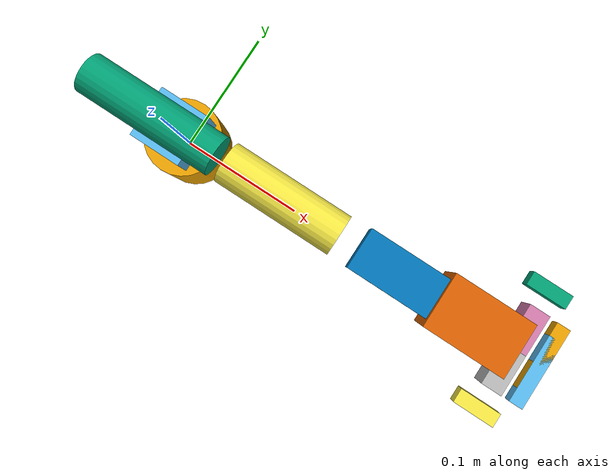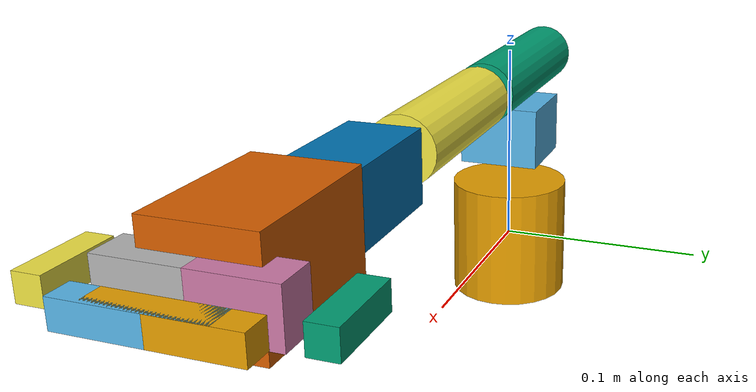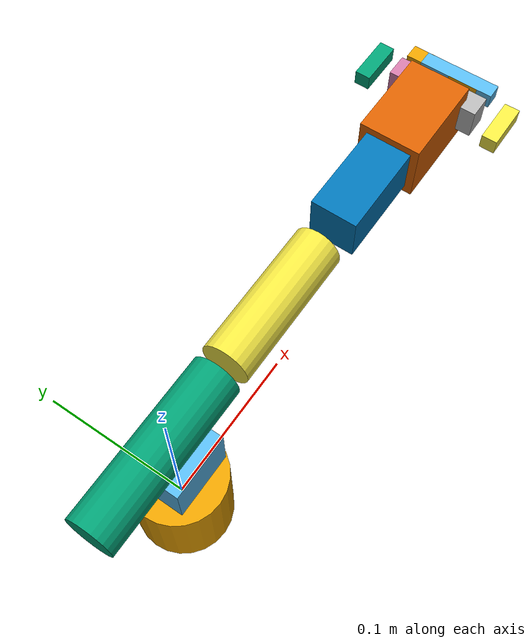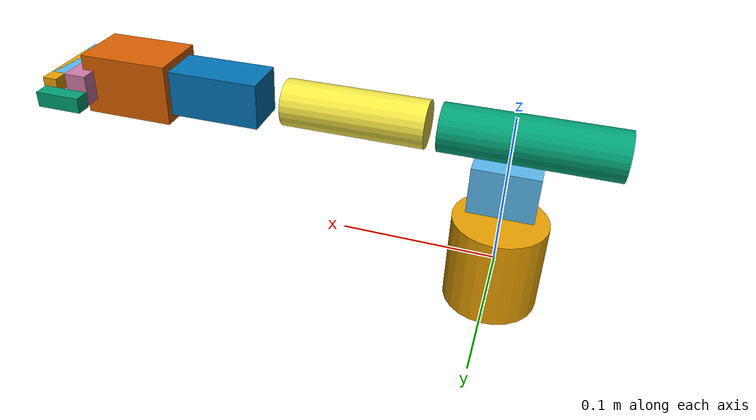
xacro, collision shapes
<?xml version="1.0" ?>
<robot name="learm">
  <!-- Arm base: cylinder mount matching iris_with_arm SDF -->
  <link name="arm_base_link">
    <inertial>
      <mass value="0.001"/>
      <inertia ixx="0.000001" ixy="0" ixz="0" iyy="0.000001" iyz="0" izz="0.000001"/>
    </inertial>
    <visual>
      <geometry>
        <cylinder radius="0.03" length="0.06"/>
      </geometry>
    </visual>
    <collision>
      <geometry>
        <cylinder radius="0.03" length="0.06"/>
      </geometry>
    </collision>
  </link>
  <link name="shoulder_link">
    <inertial>
      <mass value="0.001"/>
      <inertia ixx="0.000001" ixy="0" ixz="0" iyy="0.000001" iyz="0" izz="0.000001"/>
    </inertial>
    <visual>
      <geometry>
        <mesh filename="package://ardupilot_gz_description/models/iris_with_arm/meshes/shoulder.stl"/>
      </geometry>
    </visual>
    <collision>
      <geometry>
        <box size="0.04 0.04 0.03"/>
      </geometry>
    </collision>
  </link>
  <link name="humerus_link">
    <inertial>
      <mass value="0.001"/>
      <inertia ixx="0.000001" ixy="0" ixz="0" iyy="0.000001" iyz="0" izz="0.000001"/>
    </inertial>
    <visual>
      <geometry>
        <mesh filename="package://ardupilot_gz_description/models/iris_with_arm/meshes/humerus.stl"/>
      </geometry>
    </visual>
    <collision>
      <geometry>
        <cylinder radius="0.015" length="0.105"/>
      </geometry>
    </collision>
  </link>
  <link name="forearm_link">
    <inertial>
      <mass value="0.001"/>
      <inertia ixx="0.000001" ixy="0" ixz="0" iyy="0.000001" iyz="0" izz="0.000001"/>
    </inertial>
    <visual>
      <geometry>
        <mesh filename="package://ardupilot_gz_description/models/iris_with_arm/meshes/forearm.stl"/>
      </geometry>
    </visual>
    <collision>
      <geometry>
        <cylinder radius="0.015" length="0.09"/>
      </geometry>
    </collision>
  </link>
  <link name="wrist_link">
    <inertial>
      <mass value="0.001"/>
      <inertia ixx="0.000001" ixy="0" ixz="0" iyy="0.000001" iyz="0" izz="0.000001"/>
    </inertial>
    <visual>
      <geometry>
        <mesh filename="package://ardupilot_gz_description/models/iris_with_arm/meshes/wrist.stl"/>
      </geometry>
    </visual>
    <collision>
      <geometry>
        <box size="0.03 0.03 0.06"/>
      </geometry>
    </collision>
  </link>
  <link name="hand_link">
    <inertial>
      <mass value="0.001"/>
      <inertia ixx="0.000001" ixy="0" ixz="0" iyy="0.000001" iyz="0" izz="0.000001"/>
    </inertial>
    <visual>
      <geometry>
        <mesh filename="package://ardupilot_gz_description/models/iris_with_arm/meshes/hand.stl"/>
      </geometry>
    </visual>
    <collision>
      <geometry>
        <box size="0.04 0.04 0.06"/>
      </geometry>
    </collision>
  </link>
  <link name="grip_left_link">
    <inertial>
      <mass value="0.001"/>
      <inertia ixx="0.000001" ixy="0" ixz="0" iyy="0.000001" iyz="0" izz="0.000001"/>
    </inertial>
    <visual>
      <geometry>
        <mesh filename="package://ardupilot_gz_description/models/iris_with_arm/meshes/carpal-left.stl"/>
      </geometry>
    </visual>
    <collision>
      <geometry>
        <box size="0.02 0.015 0.03"/>
      </geometry>
    </collision>
  </link>
  <link name="grip_right_link">
    <inertial>
      <mass value="0.001"/>
      <inertia ixx="0.000001" ixy="0" ixz="0" iyy="0.000001" iyz="0" izz="0.000001"/>
    </inertial>
    <visual>
      <geometry>
        <mesh filename="package://ardupilot_gz_description/models/iris_with_arm/meshes/carpal-right.stl"/>
      </geometry>
    </visual>
    <collision>
      <geometry>
        <box size="0.02 0.015 0.03"/>
      </geometry>
    </collision>
  </link>
  <link name="tendon_left_link">
    <inertial>
      <mass value="0.001"/>
      <inertia ixx="0.000001" ixy="0" ixz="0" iyy="0.000001" iyz="0" izz="0.000001"/>
    </inertial>
    <visual>
      <geometry>
        <mesh filename="package://ardupilot_gz_description/models/iris_with_arm/meshes/tendon.stl"/>
      </geometry>
    </visual>
    <collision>
      <geometry>
        <box size="0.01 0.01 0.05"/>
      </geometry>
    </collision>
  </link>
  <link name="tendon_right_link">
    <inertial>
      <mass value="0.001"/>
      <inertia ixx="0.000001" ixy="0" ixz="0" iyy="0.000001" iyz="0" izz="0.000001"/>
    </inertial>
    <visual>
      <geometry>
        <mesh filename="package://ardupilot_gz_description/models/iris_with_arm/meshes/tendon.stl"/>
      </geometry>
    </visual>
    <collision>
      <geometry>
        <box size="0.01 0.01 0.05"/>
      </geometry>
    </collision>
  </link>
  <link name="finger_left_link">
    <inertial>
      <mass value="0.001"/>
      <inertia ixx="0.000001" ixy="0" ixz="0" iyy="0.000001" iyz="0" izz="0.000001"/>
    </inertial>
    <visual>
      <geometry>
        <mesh filename="package://ardupilot_gz_description/models/iris_with_arm/meshes/finger.stl"/>
      </geometry>
    </visual>
    <collision>
      <geometry>
        <box size="0.01 0.01 0.03"/>
      </geometry>
    </collision>
  </link>
  <link name="finger_right_link">
    <inertial>
      <mass value="0.001"/>
      <inertia ixx="0.000001" ixy="0" ixz="0" iyy="0.000001" iyz="0" izz="0.000001"/>
    </inertial>
    <visual>
      <origin rpy="0 0 3.14159"/>
      <geometry>
        <mesh filename="package://ardupilot_gz_description/models/iris_with_arm/meshes/finger.stl"/>
      </geometry>
    </visual>
    <collision>
      <geometry>
        <box size="0.01 0.01 0.03"/>
      </geometry>
    </collision>
  </link>

  <!-- Main arm chain -->
  <joint name="shoulder_pan" type="revolute">
    <parent link="arm_base_link"/>
    <child link="shoulder_link"/>
    <origin xyz="0 0 0.059"/>
    <axis xyz="0 0 1"/>
    <limit effort="1000" lower="-1.57" upper="1.57" velocity="0.5"/>
  </joint>
  <joint name="shoulder_lift" type="revolute">
    <parent link="shoulder_link"/>
    <child link="humerus_link"/>
    <origin xyz="-0.010 0 0.028" rpy="0 1.5708 0"/>
    <axis xyz="0 1 0"/>
    <limit effort="1000" lower="-3.142" upper="0.0" velocity="0.5"/>
  </joint>
  <joint name="elbow" type="revolute">
    <parent link="humerus_link"/>
    <child link="forearm_link"/>
    <origin xyz="0 0 0.105"/>
    <axis xyz="0 -1 0"/>
    <limit effort="1000" lower="-1.57" upper="1.57" velocity="0.5"/>
  </joint>
  <joint name="wrist_flex" type="revolute">
    <parent link="forearm_link"/>
    <child link="wrist_link"/>
    <origin xyz="0 0 0.090"/>
    <axis xyz="0 -1 0"/>
    <limit effort="1000" lower="-1.57" upper="1.57" velocity="0.5"/>
  </joint>
  <joint name="wrist_roll" type="revolute">
    <parent link="wrist_link"/>
    <child link="hand_link"/>
    <origin xyz="0 0 0.060"/>
    <axis xyz="0 0 1"/>
    <limit effort="1000" lower="-1.57" upper="1.57" velocity="0.5"/>
  </joint>

  <!-- Gripper: grip_left is the driver joint, others mimic it -->
  <joint name="grip_left" type="revolute">
    <parent link="hand_link"/>
    <child link="grip_left_link"/>
    <origin rpy="-1.57 0 0" xyz="0 0.015 0.030"/>
    <axis xyz="1 0 0"/>
    <limit effort="1000" lower="0" upper="1.57" velocity="0.5"/>
  </joint>
  <joint name="grip_right" type="revolute">
    <parent link="hand_link"/>
    <child link="grip_right_link"/>
    <origin rpy="1.57 0 0" xyz="0 -0.015 0.030"/>
    <axis xyz="-1 0 0"/>
    <limit effort="1000" lower="0" upper="1.57" velocity="0.5"/>
    <mimic joint="grip_left" multiplier="1"/>
  </joint>
  <joint name="tendon_left" type="revolute">
    <parent link="hand_link"/>
    <child link="tendon_left_link"/>
    <origin rpy="-1.57 0 0" xyz="0 0.005 0.050"/>
    <axis xyz="1 0 0"/>
    <limit effort="1000" lower="0" upper="1.57" velocity="0.5"/>
    <mimic joint="grip_left" multiplier="1"/>
  </joint>
  <joint name="tendon_right" type="revolute">
    <parent link="hand_link"/>
    <child link="tendon_right_link"/>
    <origin rpy="1.57 0 0" xyz="0 -0.005 0.050"/>
    <axis xyz="-1 0 0"/>
    <limit effort="1000" lower="0" upper="1.57" velocity="0.5"/>
    <mimic joint="grip_left" multiplier="1"/>
  </joint>
  <joint name="finger_left" type="revolute">
    <parent link="grip_left_link"/>
    <child link="finger_left_link"/>
    <origin rpy="1.57 0 0" xyz="0 0 0.030"/>
    <axis xyz="-1 0 0"/>
    <limit effort="1000" lower="0" upper="1.57" velocity="0.5"/>
    <mimic joint="grip_left" multiplier="1"/>
  </joint>
  <joint name="finger_right" type="revolute">
    <parent link="grip_right_link"/>
    <child link="finger_right_link"/>
    <origin rpy="-1.57 0 0" xyz="0 0 0.030"/>
    <axis xyz="1 0 0"/>
    <limit effort="1000" lower="0" upper="1.57" velocity="0.5"/>
    <mimic joint="grip_left" multiplier="1"/>
  </joint>

  <!-- ros2_control interface for mock hardware (demo) -->
  <ros2_control name="MockHardwareSystem" type="system">
    <hardware>
      <plugin>mock_components/GenericSystem</plugin>
    </hardware>
    <joint name="shoulder_pan">
      <command_interface name="position"/>
      <state_interface name="position"><param name="initial_value">0.0</param></state_interface>
      <state_interface name="velocity"/>
    </joint>
    <joint name="shoulder_lift">
      <command_interface name="position"/>
      <state_interface name="position"><param name="initial_value">-0.3</param></state_interface>
      <state_interface name="velocity"/>
    </joint>
    <joint name="elbow">
      <command_interface name="position"/>
      <state_interface name="position"><param name="initial_value">-1.57</param></state_interface>
      <state_interface name="velocity"/>
    </joint>
    <joint name="wrist_flex">
      <command_interface name="position"/>
      <state_interface name="position"><param name="initial_value">1.57</param></state_interface>
      <state_interface name="velocity"/>
    </joint>
    <joint name="wrist_roll">
      <command_interface name="position"/>
      <state_interface name="position"><param name="initial_value">0.0</param></state_interface>
      <state_interface name="velocity"/>
    </joint>
    <joint name="grip_left">
      <command_interface name="position"/>
      <state_interface name="position"><param name="initial_value">0.0</param></state_interface>
      <state_interface name="velocity"/>
    </joint>
  </ros2_control>
</robot>
